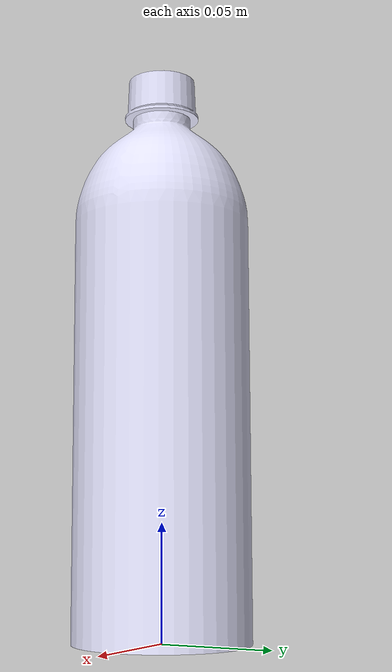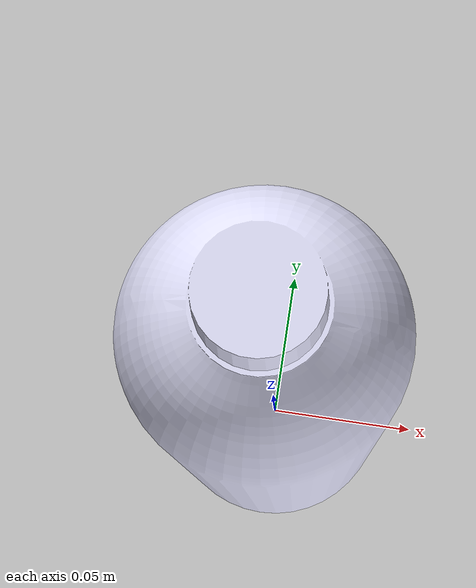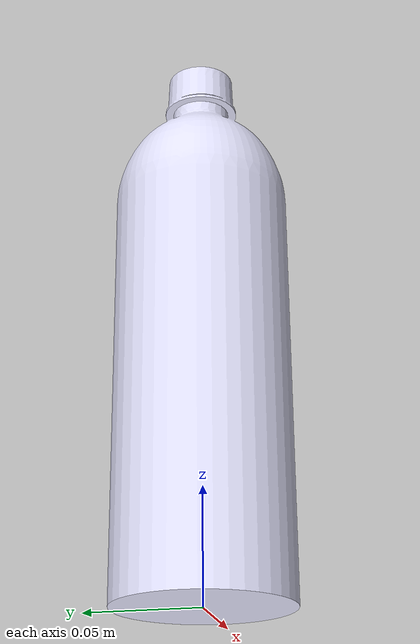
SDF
<?xml version="1.0" ?>
<sdf version="1.5">
  <model name="Bottle">
    <pose>0 0 0 0 0 0</pose>
    <link name="base_link">
       <inertial>
          <mass>0.2</mass>
        </inertial>
        <collision name="collision">
          <geometry>
            <mesh>
              <uri>model://Bottle/collision/Bottle.stl</uri>
              <scale>0.001 0.001 0.001</scale>
            </mesh>
          </geometry>
        </collision>
        <visual name="visual">
           <geometry>
           <mesh>
             <uri>model://Bottle/visual/Bottle.dae</uri>
             <scale>0.001 0.001 0.001</scale>
           </mesh>
         </geometry>
         <material>
            <ambient>0.8 .8 1 1</ambient>
            <diffuse>0.9 .9 1 1</diffuse>
            <emissive>0 0 0 0</emissive>
          </material>
        </visual>
    </link>
  </model>
</sdf>
